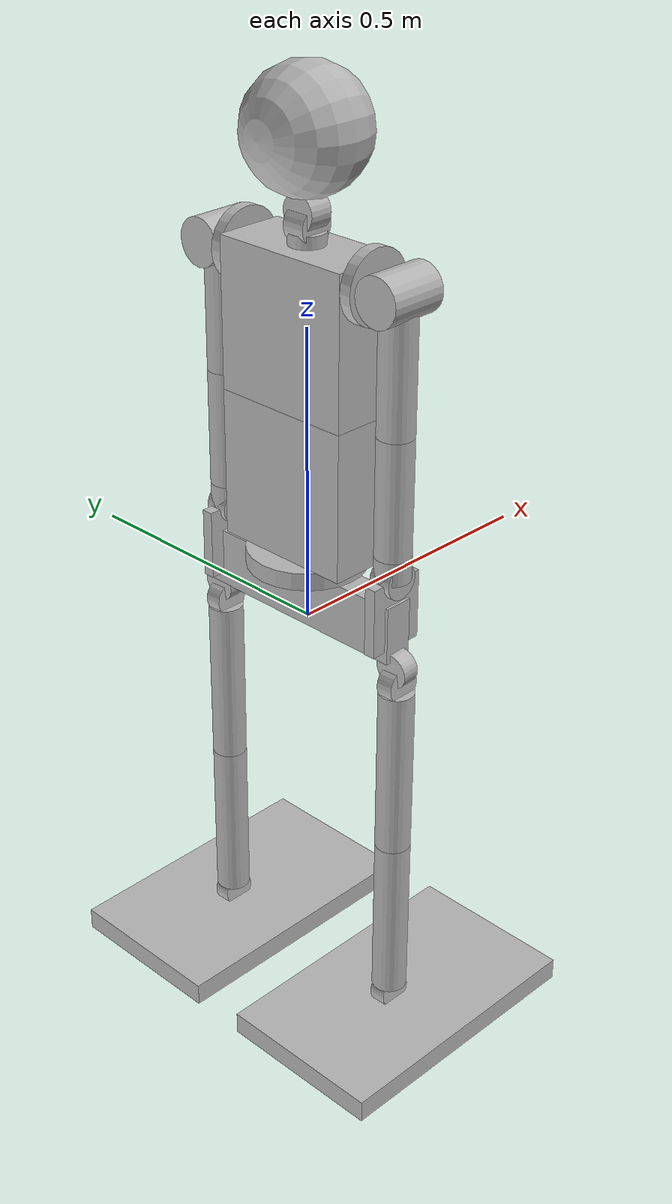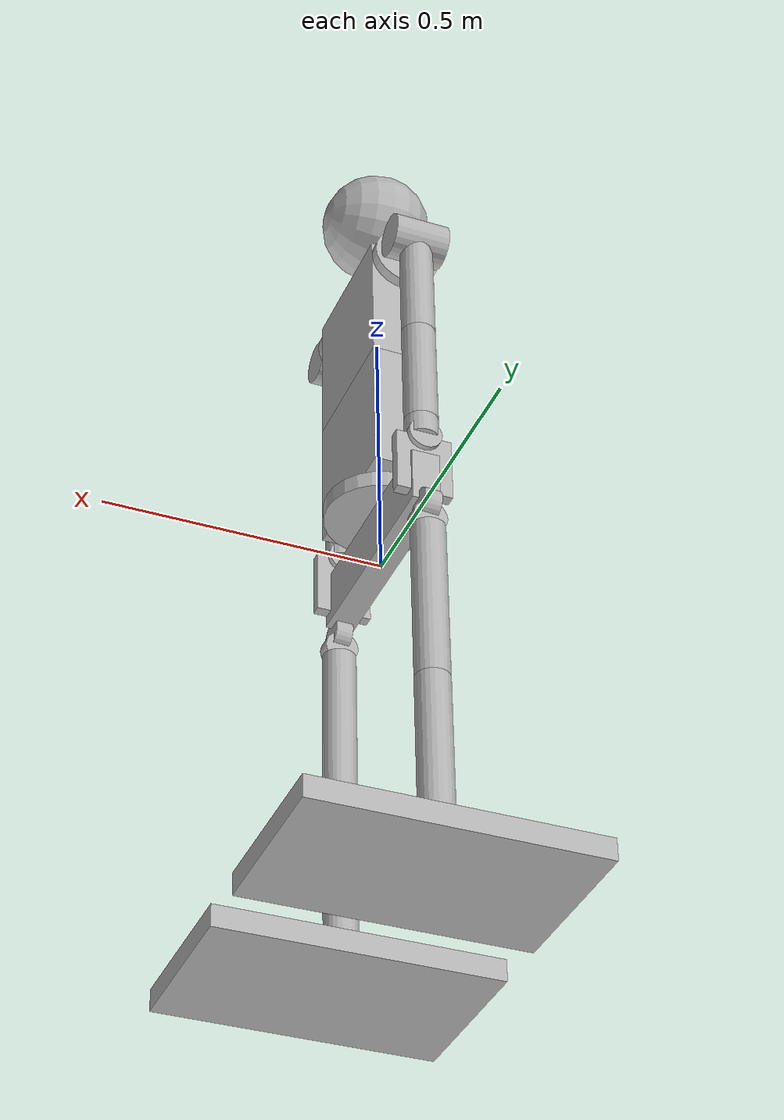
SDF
<sdf version='1.5'>
  <model name='stickbot_humanoid_32dof'>
    <link name='pelvis'>
      <pose frame=''>0 0 0 0 -0 0</pose>
      <inertial>
        <pose frame=''>0 0 0.05 0 -0 0</pose>
        <mass>2</mass>
        <inertia>
          <ixx>0.008667</ixx>
          <ixy>0</ixy>
          <ixz>0</ixz>
          <iyy>0.008667</iyy>
          <iyz>0</iyz>
          <izz>0.01667</izz>
        </inertia>
      </inertial>
      <collision name='pelvis_collision'>
        <pose frame=''>0 -0 0.05 0 -0 0</pose>
        <geometry>
          <box>
            <size>0.05 0.4 0.1</size>
          </box>
        </geometry>
      </collision>
      <visual name='pelvis_visual'>
        <pose frame=''>0 -0 0.05 0 -0 0</pose>
        <geometry>
          <box>
            <size>0.05 0.4 0.1</size>
          </box>
        </geometry>
      </visual>
    </link>
    <link name='leftHipLink1'>
      <pose frame=''>0 0.2 0 0 -0 0</pose>
      <inertial>
        <pose frame=''>0 0 -0.015 0 -0 0</pose>
        <mass>2</mass>
        <inertia>
          <ixx>0.00015</ixx>
          <ixy>0</ixy>
          <ixz>0</ixz>
          <iyy>0.00015</iyy>
          <iyz>0</iyz>
          <izz>0.000225</izz>
        </inertia>
      </inertial>
      <collision name='leftHipLink1_collision'>
        <pose frame=''>0 0 -0.015 1.507 -0 0</pose>
        <geometry>
          <cylinder>
            <length>0.03</length>
            <radius>0.03</radius>
          </cylinder>
        </geometry>
      </collision>
      <visual name='leftHipLink1_visual'>
        <pose frame=''>0 0 -0.015 0 1.507 0</pose>
        <geometry>
          <cylinder>
            <length>0.03</length>
            <radius>0.03</radius>
          </cylinder>
        </geometry>
      </visual>
    </link>
    <joint name='leftHipJoint1' type='revolute'>
      <child>leftHipLink1</child>
      <parent>pelvis</parent>
      <axis>
        <xyz>0 0 1</xyz>
        <limit>
          <lower>-1e+16</lower>
          <upper>1e+16</upper>
        </limit>
        <dynamics>
          <damping>0.1</damping>
          <friction>0</friction>
          <spring_reference>0</spring_reference>
          <spring_stiffness>0</spring_stiffness>
        </dynamics>
        <use_parent_model_frame>1</use_parent_model_frame>
      </axis>
      <physics>
        <provide_feedback>1</provide_feedback>
        <ode>
          <provide_feedback>1</provide_feedback>
          <limit>
            <cfm>0</cfm>
            <erp>0.2</erp>
          </limit>
        </ode>
      </physics>
    </joint>
    <link name='leftHipExtensorLink'>
      <pose frame=''>0 0.2 -0.03 0 -0 0</pose>
      <inertial>
        <pose frame=''>0 0 -0.015 0 -0 0</pose>
        <mass>2</mass>
        <inertia>
          <ixx>0.00015</ixx>
          <ixy>0</ixy>
          <ixz>0</ixz>
          <iyy>0.00015</iyy>
          <iyz>0</iyz>
          <izz>0.000225</izz>
        </inertia>
      </inertial>
      <collision name='leftHipExtensorLink_collision'>
        <pose frame=''>0 0 -0.015 1.507 -0 0</pose>
        <geometry>
          <cylinder>
            <length>0.03</length>
            <radius>0.03</radius>
          </cylinder>
        </geometry>
      </collision>
      <visual name='leftHipExtensorLink_visual'>
        <pose frame=''>0 0 -0.015 1.507 -0 0</pose>
        <geometry>
          <cylinder>
            <length>0.03</length>
            <radius>0.03</radius>
          </cylinder>
        </geometry>
      </visual>
    </link>
    <joint name='leftHipExtensor' type='revolute'>
      <child>leftHipExtensorLink</child>
      <parent>leftHipLink1</parent>
      <axis>
        <xyz>0 1 0</xyz>
        <limit>
          <lower>-1e+16</lower>
          <upper>1e+16</upper>
        </limit>
        <dynamics>
          <damping>0.1</damping>
          <friction>0</friction>
          <spring_reference>0</spring_reference>
          <spring_stiffness>0</spring_stiffness>
        </dynamics>
        <use_parent_model_frame>1</use_parent_model_frame>
      </axis>
      <physics>
        <provide_feedback>1</provide_feedback>
        <ode>
          <provide_feedback>1</provide_feedback>
          <limit>
            <cfm>0</cfm>
            <erp>0.2</erp>
          </limit>
        </ode>
      </physics>
    </joint>
    <link name='leftUpperLeg'>
      <pose frame=''>0 0.2 -0.06 0 -0 0</pose>
      <inertial>
        <pose frame=''>-0 0 -0.15 0 -0 0</pose>
        <mass>2</mass>
        <inertia>
          <ixx>0.01545</ixx>
          <ixy>0</ixy>
          <ixz>0</ixz>
          <iyy>0.01545</iyy>
          <iyz>0</iyz>
          <izz>0.0009</izz>
        </inertia>
      </inertial>
      <collision name='leftUpperLeg_collision'>
        <pose frame=''>0 0 -0.3 0 -0 0</pose>
        <geometry>
          <cylinder>
            <length>0.3</length>
            <radius>0.03</radius>
          </cylinder>
        </geometry>
      </collision>
      <visual name='leftUpperLeg_visual'>
        <pose frame=''>0 0 -0.15 0 -0 0</pose>
        <geometry>
          <cylinder>
            <length>0.3</length>
            <radius>0.03</radius>
          </cylinder>
        </geometry>
      </visual>
    </link>
    <joint name='leftHipAductor' type='revolute'>
      <child>leftUpperLeg</child>
      <parent>leftHipExtensorLink</parent>
      <axis>
        <xyz>1 0 0</xyz>
        <limit>
          <lower>-1e+16</lower>
          <upper>1e+16</upper>
        </limit>
        <dynamics>
          <damping>0.1</damping>
          <friction>0</friction>
          <spring_reference>0</spring_reference>
          <spring_stiffness>0</spring_stiffness>
        </dynamics>
        <use_parent_model_frame>1</use_parent_model_frame>
      </axis>
      <physics>
        <provide_feedback>1</provide_feedback>
        <ode>
          <provide_feedback>1</provide_feedback>
          <limit>
            <cfm>0</cfm>
            <erp>0.2</erp>
          </limit>
        </ode>
      </physics>
    </joint>
    <link name='leftLowerLeg'>
      <pose frame=''>0 0.2 -0.36 0 -0 0</pose>
      <inertial>
        <pose frame=''>-0 0 -0.15 0 -0 0</pose>
        <mass>2</mass>
        <inertia>
          <ixx>0.01545</ixx>
          <ixy>0</ixy>
          <ixz>0</ixz>
          <iyy>0.01545</iyy>
          <iyz>0</iyz>
          <izz>0.0009</izz>
        </inertia>
      </inertial>
      <collision name='leftLowerLeg_collision'>
        <pose frame=''>0 0 -0.15 0 -0 0</pose>
        <geometry>
          <cylinder>
            <length>0.3</length>
            <radius>0.03</radius>
          </cylinder>
        </geometry>
      </collision>
      <visual name='leftLowerLeg_visual'>
        <pose frame=''>0 0 -0.15 0 -0 0</pose>
        <geometry>
          <cylinder>
            <length>0.3</length>
            <radius>0.03</radius>
          </cylinder>
        </geometry>
      </visual>
    </link>
    <joint name='leftKnee' type='revolute'>
      <child>leftLowerLeg</child>
      <parent>leftUpperLeg</parent>
      <axis>
        <xyz>0 1 0</xyz>
        <limit>
          <lower>-1e+16</lower>
          <upper>1e+16</upper>
        </limit>
        <dynamics>
          <damping>0.1</damping>
          <friction>0</friction>
          <spring_reference>0</spring_reference>
          <spring_stiffness>0</spring_stiffness>
        </dynamics>
        <use_parent_model_frame>1</use_parent_model_frame>
      </axis>
      <physics>
        <provide_feedback>1</provide_feedback>
        <ode>
          <provide_feedback>1</provide_feedback>
          <limit>
            <cfm>0</cfm>
            <erp>0.2</erp>
          </limit>
        </ode>
      </physics>
    </joint>
    <link name='leftAnkleLink'>
      <pose frame=''>0 0.2 -0.66 0 -0 0</pose>
      <inertial>
        <pose frame=''>0 0 -0.015 0 -0 0</pose>
        <mass>3</mass>
        <inertia>
          <ixx>0.00015</ixx>
          <ixy>0</ixy>
          <ixz>0</ixz>
          <iyy>0.00015</iyy>
          <iyz>0</iyz>
          <izz>0.000225</izz>
        </inertia>
      </inertial>
      <collision name='leftAnkleLink_collision'>
        <pose frame=''>0 0 -0.015 0 -0 0</pose>
        <geometry>
          <cylinder>
            <length>0.03</length>
            <radius>0.03</radius>
          </cylinder>
        </geometry>
      </collision>
      <visual name='leftAnkleLink_visual'>
        <pose frame=''>0 0 -0.015 1.507 -0 0</pose>
        <geometry>
          <cylinder>
            <length>0.03</length>
            <radius>0.03</radius>
          </cylinder>
        </geometry>
      </visual>
    </link>
    <joint name='leftAnklePitch' type='revolute'>
      <child>leftAnkleLink</child>
      <parent>leftLowerLeg</parent>
      <axis>
        <xyz>0 1 0</xyz>
        <limit>
          <lower>-1e+16</lower>
          <upper>1e+16</upper>
        </limit>
        <dynamics>
          <damping>0.1</damping>
          <friction>0</friction>
          <spring_reference>0</spring_reference>
          <spring_stiffness>0</spring_stiffness>
        </dynamics>
        <use_parent_model_frame>1</use_parent_model_frame>
      </axis>
      <physics>
        <provide_feedback>1</provide_feedback>
        <ode>
          <provide_feedback>1</provide_feedback>
          <limit>
            <cfm>0</cfm>
            <erp>0.2</erp>
          </limit>
        </ode>
      </physics>
    </joint>
    <link name='leftFoot'>
      <pose frame=''>0.025 0.2 -0.69 0 -0 0</pose>
      <inertial>
        <pose frame=''>0.03 0 -0.01 0 -0 0</pose>
        <mass>10</mass>
        <inertia>
          <ixx>0.008667</ixx>
          <ixy>0</ixy>
          <ixz>0</ixz>
          <iyy>0.008667</iyy>
          <iyz>0</iyz>
          <izz>0.01667</izz>
        </inertia>
      </inertial>
      <collision name='leftFoot_collision'>
        <pose frame=''>0 0 -0.02 0 -0 0</pose>
        <geometry>
          <box>
            <size>0.5 0.3 0.04</size>
          </box>
        </geometry>
      </collision>
      <visual name='leftFoot_visual'>
        <pose frame=''>0 0 -0.02 0 -0 0</pose>
        <geometry>
          <box>
            <size>0.5 0.3 0.04</size>
          </box>
        </geometry>
      </visual>
    </link>
    <joint name='leftAnkleRoll' type='revolute'>
      <child>leftFoot</child>
      <parent>leftAnkleLink</parent>
      <axis>
        <xyz>1 0 0</xyz>
        <limit>
          <lower>-1e+16</lower>
          <upper>1e+16</upper>
        </limit>
        <dynamics>
          <damping>0.1</damping>
          <friction>0</friction>
          <spring_reference>0</spring_reference>
          <spring_stiffness>0</spring_stiffness>
        </dynamics>
        <use_parent_model_frame>1</use_parent_model_frame>
      </axis>
      <physics>
        <provide_feedback>1</provide_feedback>
        <ode>
          <provide_feedback>1</provide_feedback>
          <limit>
            <cfm>0</cfm>
            <erp>0.2</erp>
          </limit>
        </ode>
      </physics>
    </joint>
    <link name='rightHipLink1'>
      <pose frame=''>0 -0.2 0 0 -0 0</pose>
      <inertial>
        <pose frame=''>0 0 -0.015 0 -0 0</pose>
        <mass>2</mass>
        <inertia>
          <ixx>0.00015</ixx>
          <ixy>0</ixy>
          <ixz>0</ixz>
          <iyy>0.00015</iyy>
          <iyz>0</iyz>
          <izz>0.000225</izz>
        </inertia>
      </inertial>
      <collision name='rightHipLink1_collision'>
        <pose frame=''>0 0 -0.015 1.507 -0 0</pose>
        <geometry>
          <cylinder>
            <length>0.03</length>
            <radius>0.03</radius>
          </cylinder>
        </geometry>
      </collision>
      <visual name='rightHipLink1_visual'>
        <pose frame=''>0 0 -0.015 0 1.507 0</pose>
        <geometry>
          <cylinder>
            <length>0.03</length>
            <radius>0.03</radius>
          </cylinder>
        </geometry>
      </visual>
    </link>
    <joint name='rightHipJoint1' type='revolute'>
      <child>rightHipLink1</child>
      <parent>pelvis</parent>
      <axis>
        <xyz>0 0 1</xyz>
        <limit>
          <lower>-1e+16</lower>
          <upper>1e+16</upper>
        </limit>
        <dynamics>
          <damping>0.1</damping>
          <friction>0</friction>
          <spring_reference>0</spring_reference>
          <spring_stiffness>0</spring_stiffness>
        </dynamics>
        <use_parent_model_frame>1</use_parent_model_frame>
      </axis>
      <physics>
        <provide_feedback>1</provide_feedback>
        <ode>
          <provide_feedback>1</provide_feedback>
          <limit>
            <cfm>0</cfm>
            <erp>0.2</erp>
          </limit>
        </ode>
      </physics>
    </joint>
    <link name='rightHipExtensorLink'>
      <pose frame=''>0 -0.2 -0.03 0 -0 0</pose>
      <inertial>
        <pose frame=''>0 0 -0.015 0 -0 0</pose>
        <mass>2</mass>
        <inertia>
          <ixx>0.00015</ixx>
          <ixy>0</ixy>
          <ixz>0</ixz>
          <iyy>0.00015</iyy>
          <iyz>0</iyz>
          <izz>0.000225</izz>
        </inertia>
      </inertial>
      <collision name='rightHipExtensorLink_collision'>
        <pose frame=''>0 0 -0.015 1.507 -0 0</pose>
        <geometry>
          <cylinder>
            <length>0.03</length>
            <radius>0.03</radius>
          </cylinder>
        </geometry>
      </collision>
      <visual name='rightHipExtensorLink_visual'>
        <pose frame=''>0 0 -0.015 1.507 -0 0</pose>
        <geometry>
          <cylinder>
            <length>0.03</length>
            <radius>0.03</radius>
          </cylinder>
        </geometry>
      </visual>
    </link>
    <joint name='rightHipExtensor' type='revolute'>
      <child>rightHipExtensorLink</child>
      <parent>rightHipLink1</parent>
      <axis>
        <xyz>0 1 0</xyz>
        <limit>
          <lower>-1e+16</lower>
          <upper>1e+16</upper>
        </limit>
        <dynamics>
          <damping>0.1</damping>
          <friction>0</friction>
          <spring_reference>0</spring_reference>
          <spring_stiffness>0</spring_stiffness>
        </dynamics>
        <use_parent_model_frame>1</use_parent_model_frame>
      </axis>
      <physics>
        <provide_feedback>1</provide_feedback>
        <ode>
          <provide_feedback>1</provide_feedback>
          <limit>
            <cfm>0</cfm>
            <erp>0.2</erp>
          </limit>
        </ode>
      </physics>
    </joint>
    <link name='rightUpperLeg'>
      <pose frame=''>0 -0.2 -0.06 0 -0 0</pose>
      <inertial>
        <pose frame=''>-0 0 -0.15 0 -0 0</pose>
        <mass>2</mass>
        <inertia>
          <ixx>0.01545</ixx>
          <ixy>0</ixy>
          <ixz>0</ixz>
          <iyy>0.01545</iyy>
          <iyz>0</iyz>
          <izz>0.0009</izz>
        </inertia>
      </inertial>
      <collision name='rightUpperLeg_collision'>
        <pose frame=''>0 0 -0.3 0 -0 0</pose>
        <geometry>
          <cylinder>
            <length>0.3</length>
            <radius>0.03</radius>
          </cylinder>
        </geometry>
      </collision>
      <visual name='rightUpperLeg_visual'>
        <pose frame=''>0 0 -0.15 0 -0 0</pose>
        <geometry>
          <cylinder>
            <length>0.3</length>
            <radius>0.03</radius>
          </cylinder>
        </geometry>
      </visual>
    </link>
    <joint name='rightHipAductor' type='revolute'>
      <child>rightUpperLeg</child>
      <parent>rightHipExtensorLink</parent>
      <axis>
        <xyz>1 0 0</xyz>
        <limit>
          <lower>-1e+16</lower>
          <upper>1e+16</upper>
        </limit>
        <dynamics>
          <damping>0.1</damping>
          <friction>0</friction>
          <spring_reference>0</spring_reference>
          <spring_stiffness>0</spring_stiffness>
        </dynamics>
        <use_parent_model_frame>1</use_parent_model_frame>
      </axis>
      <physics>
        <provide_feedback>1</provide_feedback>
        <ode>
          <provide_feedback>1</provide_feedback>
          <limit>
            <cfm>0</cfm>
            <erp>0.2</erp>
          </limit>
        </ode>
      </physics>
    </joint>
    <link name='rightLowerLeg'>
      <pose frame=''>0 -0.2 -0.36 0 -0 0</pose>
      <inertial>
        <pose frame=''>-0 0 -0.15 0 -0 0</pose>
        <mass>2</mass>
        <inertia>
          <ixx>0.01545</ixx>
          <ixy>0</ixy>
          <ixz>0</ixz>
          <iyy>0.01545</iyy>
          <iyz>0</iyz>
          <izz>0.0009</izz>
        </inertia>
      </inertial>
      <collision name='rightLowerLeg_collision'>
        <pose frame=''>0 0 -0.15 0 -0 0</pose>
        <geometry>
          <cylinder>
            <length>0.3</length>
            <radius>0.03</radius>
          </cylinder>
        </geometry>
      </collision>
      <visual name='rightLowerLeg_visual'>
        <pose frame=''>0 0 -0.15 0 -0 0</pose>
        <geometry>
          <cylinder>
            <length>0.3</length>
            <radius>0.03</radius>
          </cylinder>
        </geometry>
      </visual>
    </link>
    <joint name='rightKnee' type='revolute'>
      <child>rightLowerLeg</child>
      <parent>rightUpperLeg</parent>
      <axis>
        <xyz>0 1 0</xyz>
        <limit>
          <lower>-1e+16</lower>
          <upper>1e+16</upper>
        </limit>
        <dynamics>
          <damping>0.1</damping>
          <friction>0</friction>
          <spring_reference>0</spring_reference>
          <spring_stiffness>0</spring_stiffness>
        </dynamics>
        <use_parent_model_frame>1</use_parent_model_frame>
      </axis>
      <physics>
        <provide_feedback>1</provide_feedback>
        <ode>
          <provide_feedback>1</provide_feedback>
          <limit>
            <cfm>0</cfm>
            <erp>0.2</erp>
          </limit>
        </ode>
      </physics>
    </joint>
    <link name='rightAnkleLink'>
      <pose frame=''>0 -0.2 -0.66 0 -0 0</pose>
      <inertial>
        <pose frame=''>0 0 -0.015 0 -0 0</pose>
        <mass>3</mass>
        <inertia>
          <ixx>0.00015</ixx>
          <ixy>0</ixy>
          <ixz>0</ixz>
          <iyy>0.00015</iyy>
          <iyz>0</iyz>
          <izz>0.000225</izz>
        </inertia>
      </inertial>
      <collision name='rightAnkleLink_collision'>
        <pose frame=''>0 0 -0.015 1.507 -0 0</pose>
        <geometry>
          <cylinder>
            <length>0.03</length>
            <radius>0.03</radius>
          </cylinder>
        </geometry>
      </collision>
      <visual name='rightAnkleLink_visual'>
        <pose frame=''>0 0 -0.015 1.507 -0 0</pose>
        <geometry>
          <cylinder>
            <length>0.03</length>
            <radius>0.03</radius>
          </cylinder>
        </geometry>
      </visual>
    </link>
    <joint name='rightAnklePitch' type='revolute'>
      <child>rightAnkleLink</child>
      <parent>rightLowerLeg</parent>
      <axis>
        <xyz>0 1 0</xyz>
        <limit>
          <lower>-1e+16</lower>
          <upper>1e+16</upper>
        </limit>
        <dynamics>
          <damping>0.1</damping>
          <friction>0</friction>
          <spring_reference>0</spring_reference>
          <spring_stiffness>0</spring_stiffness>
        </dynamics>
        <use_parent_model_frame>1</use_parent_model_frame>
      </axis>
      <physics>
        <provide_feedback>1</provide_feedback>
        <ode>
          <provide_feedback>1</provide_feedback>
          <limit>
            <cfm>0</cfm>
            <erp>0.2</erp>
          </limit>
        </ode>
      </physics>
    </joint>
    <link name='rightFoot'>
      <pose frame=''>0.025 -0.2 -0.69 0 -0 0</pose>
      <inertial>
        <pose frame=''>0.03 0 -0.02 0 -0 0</pose>
        <mass>10</mass>
        <inertia>
          <ixx>0.008667</ixx>
          <ixy>0</ixy>
          <ixz>0</ixz>
          <iyy>0.008667</iyy>
          <iyz>0</iyz>
          <izz>0.01667</izz>
        </inertia>
      </inertial>
      <collision name='rightFoot_collision'>
        <pose frame=''>0 0 -0.02 0 -0 0</pose>
        <geometry>
          <box>
            <size>0.5 0.3 0.04</size>
          </box>
        </geometry>
      </collision>
      <visual name='rightFoot_visual'>
        <pose frame=''>0 0 -0.02 0 -0 0</pose>
        <geometry>
          <box>
            <size>0.5 0.3 0.04</size>
          </box>
        </geometry>
      </visual>
    </link>
    <joint name='rightAnkleRoll' type='revolute'>
      <child>rightFoot</child>
      <parent>rightAnkleLink</parent>
      <axis>
        <xyz>1 0 0</xyz>
        <limit>
          <lower>-1e+16</lower>
          <upper>1e+16</upper>
        </limit>
        <dynamics>
          <damping>0.1</damping>
          <friction>0</friction>
          <spring_reference>0</spring_reference>
          <spring_stiffness>0</spring_stiffness>
        </dynamics>
        <use_parent_model_frame>1</use_parent_model_frame>
      </axis>
      <physics>
        <provide_feedback>1</provide_feedback>
        <ode>
          <provide_feedback>1</provide_feedback>
          <limit>
            <cfm>0</cfm>
            <erp>0.2</erp>
          </limit>
        </ode>
      </physics>
    </joint>
    <link name='abdomen'>
      <pose frame=''>0 0 0.1 0 -0 0</pose>
      <inertial>
        <pose frame=''>0 0 0.125 0 -0 0</pose>
        <mass>1</mass>
        <inertia>
          <ixx>0.028125</ixx>
          <ixy>0</ixy>
          <ixz>0</ixz>
          <iyy>0.045</iyy>
          <iyz>0</iyz>
          <izz>0.028125</izz>
        </inertia>
      </inertial>
      <collision name='abdomen_collision'>
        <pose frame=''>0 0 0.015 0 -0 0</pose>
        <geometry>
          <cylinder>
            <length>0.03</length>
            <radius>0.1</radius>
          </cylinder>
        </geometry>
      </collision>
      <visual name='abdomen_visual'>
        <pose frame=''>0 0 0.015 0 -0 0</pose>
        <geometry>
          <cylinder>
            <length>0.03</length>
            <radius>0.1</radius>
          </cylinder>
        </geometry>
      </visual>
    </link>
    <joint name='waist_rotator' type='revolute'>
      <child>abdomen</child>
      <parent>pelvis</parent>
      <axis>
        <xyz>0 0 1</xyz>
        <limit>
          <lower>-1e+16</lower>
          <upper>1e+16</upper>
        </limit>
        <dynamics>
          <damping>0.1</damping>
          <friction>0</friction>
          <spring_reference>0</spring_reference>
          <spring_stiffness>0</spring_stiffness>
        </dynamics>
        <use_parent_model_frame>1</use_parent_model_frame>
      </axis>
      <physics>
        <provide_feedback>1</provide_feedback>
        <ode>
          <provide_feedback>1</provide_feedback>
          <limit>
            <cfm>0</cfm>
            <erp>0.2</erp>
          </limit>
        </ode>
      </physics>
    </joint>
    <link name='torso'>
      <pose frame=''>0 0 0.13 0 -0 0</pose>
      <inertial>
        <pose frame=''>0 0 0.125 0 -0 0</pose>
        <mass>2</mass>
        <inertia>
          <ixx>0.028125</ixx>
          <ixy>0</ixy>
          <ixz>0</ixz>
          <iyy>0.045</iyy>
          <iyz>0</iyz>
          <izz>0.028125</izz>
        </inertia>
      </inertial>
      <collision name='torso_collision'>
        <pose frame=''>0 0 0.125 0 -0 0</pose>
        <geometry>
          <box>
            <size>0.12 0.25 0.25</size>
          </box>
        </geometry>
      </collision>
      <visual name='torso_visual'>
        <pose frame=''>0 0 0.125 0 -0 0</pose>
        <geometry>
          <box>
            <size>0.12 0.25 0.25</size>
          </box>
        </geometry>
      </visual>
    </link>
    <joint name='torso_extensor' type='revolute'>
      <child>torso</child>
      <parent>abdomen</parent>
      <axis>
        <xyz>0 1 0</xyz>
        <limit>
          <lower>-1e+16</lower>
          <upper>1e+16</upper>
        </limit>
        <dynamics>
          <damping>0.1</damping>
          <friction>0</friction>
          <spring_reference>0</spring_reference>
          <spring_stiffness>0</spring_stiffness>
        </dynamics>
        <use_parent_model_frame>1</use_parent_model_frame>
      </axis>
      <physics>
        <provide_feedback>1</provide_feedback>
        <ode>
          <provide_feedback>1</provide_feedback>
          <limit>
            <cfm>0</cfm>
            <erp>0.2</erp>
          </limit>
        </ode>
      </physics>
    </joint>
    <link name='chest'>
      <pose frame=''>0 0 0.38 0 -0 0</pose>
      <inertial>
        <pose frame=''>0 0 0.125 0 -0 0</pose>
        <mass>2</mass>
        <inertia>
          <ixx>0.028125</ixx>
          <ixy>0</ixy>
          <ixz>0</ixz>
          <iyy>0.045</iyy>
          <iyz>0</iyz>
          <izz>0.028125</izz>
        </inertia>
      </inertial>
      <collision name='chest_collision'>
        <pose frame=''>0 0 0.125 0 -0 0</pose>
        <geometry>
          <box>
            <size>0.12 0.25 0.25</size>
          </box>
        </geometry>
      </collision>
      <visual name='chest_visual'>
        <pose frame=''>0 0 0.125 0 -0 0</pose>
        <geometry>
          <box>
            <size>0.12 0.25 0.25</size>
          </box>
        </geometry>
      </visual>
    </link>
    <joint name='chest_extensor' type='revolute'>
      <child>chest</child>
      <parent>torso</parent>
      <axis>
        <xyz>0 1 0</xyz>
        <limit>
          <lower>-1e+16</lower>
          <upper>1e+16</upper>
        </limit>
        <dynamics>
          <damping>0.1</damping>
          <friction>0</friction>
          <spring_reference>0</spring_reference>
          <spring_stiffness>0</spring_stiffness>
        </dynamics>
        <use_parent_model_frame>1</use_parent_model_frame>
      </axis>
      <physics>
        <provide_feedback>1</provide_feedback>
        <ode>
          <provide_feedback>1</provide_feedback>
          <limit>
            <cfm>0</cfm>
            <erp>0.2</erp>
          </limit>
        </ode>
      </physics>
    </joint>
    <link name='left_shoulder_extensor'>
      <pose frame=''>0 0.125 0.6 0 -0 0</pose>
      <inertial>
        <pose frame=''>0 0.01 0 0 -0 0</pose>
        <mass>1</mass>
        <inertia>
          <ixx>0.028125</ixx>
          <ixy>0</ixy>
          <ixz>0</ixz>
          <iyy>0.045</iyy>
          <iyz>0</iyz>
          <izz>0.028125</izz>
        </inertia>
      </inertial>
      <collision name='left_shoulder_extensor_collision'>
        <pose frame=''>0 0.01 0 1.57 -0 0</pose>
        <geometry>
          <cylinder>
            <length>0.02</length>
            <radius>0.06</radius>
          </cylinder>
        </geometry>
        <surface>
          <contact>
            <ode/>
          </contact>
          <friction>
            <ode/>
          </friction>
        </surface>
      </collision>
      <visual name='left_shoulder_extensor_visual'>
        <pose frame=''>0 0.01 0 1.57 -0 0</pose>
        <geometry>
          <cylinder>
            <length>0.02</length>
            <radius>0.06</radius>
          </cylinder>
        </geometry>
        <material>
          <script>
            <uri>__default__</uri>
            <name>__default__</name>
          </script>
        </material>
      </visual>
      <gravity>1</gravity>
      <velocity_decay/>
      <self_collide>0</self_collide>
    </link>
    <joint name='left_shoulder_extensor' type='revolute'>
      <child>left_shoulder_extensor</child>
      <parent>chest</parent>
      <axis>
        <xyz>0 1 0</xyz>
        <limit>
          <lower>-1e+16</lower>
          <upper>1e+16</upper>
        </limit>
        <dynamics>
          <damping>0.1</damping>
          <friction>0</friction>
          <spring_reference>0</spring_reference>
          <spring_stiffness>0</spring_stiffness>
        </dynamics>
        <use_parent_model_frame>1</use_parent_model_frame>
      </axis>
      <physics>
        <provide_feedback>1</provide_feedback>
        <ode>
          <provide_feedback>1</provide_feedback>
          <limit>
            <cfm>0</cfm>
            <erp>0.2</erp>
          </limit>
        </ode>
      </physics>
    </joint>
    <link name='left_shoulder_adductor'>
      <pose frame=''>0 0.165 0.6 0 -0 0</pose>
      <inertial>
        <pose frame=''>0 0.02 0 0 -0 0</pose>
        <mass>1</mass>
        <inertia>
          <ixx>0.028125</ixx>
          <ixy>0</ixy>
          <ixz>0</ixz>
          <iyy>0.045</iyy>
          <iyz>0</iyz>
          <izz>0.028125</izz>
        </inertia>
      </inertial>
      <collision name='left_shoulder_adductor_collision'>
        <pose frame=''>0 0.02 0 0 1.57 0</pose>
        <geometry>
          <cylinder>
            <length>0.1</length>
            <radius>0.04</radius>
          </cylinder>
        </geometry>
        <surface>
          <contact>
            <ode/>
          </contact>
          <friction>
            <ode/>
          </friction>
        </surface>
      </collision>
      <visual name='left_shoulder_adductor_visual'>
        <pose frame=''>0 0.02 0 0 1.57 0</pose>
        <geometry>
          <cylinder>
            <length>0.1</length>
            <radius>0.04</radius>
          </cylinder>
        </geometry>
        <material>
          <script>
            <uri>__default__</uri>
            <name>__default__</name>
          </script>
        </material>
      </visual>
      <gravity>1</gravity>
      <velocity_decay/>
      <self_collide>0</self_collide>
    </link>
    <joint name='left_shoulder_adductor' type='revolute'>
      <child>left_shoulder_adductor</child>
      <parent>left_shoulder_extensor</parent>
      <axis>
        <xyz>1 0 0</xyz>
        <limit>
          <lower>-1e+16</lower>
          <upper>1e+16</upper>
        </limit>
        <dynamics>
          <damping>0.1</damping>
          <friction>0</friction>
          <spring_reference>0</spring_reference>
          <spring_stiffness>0</spring_stiffness>
        </dynamics>
        <use_parent_model_frame>1</use_parent_model_frame>
      </axis>
      <physics>
        <provide_feedback>1</provide_feedback>
        <ode>
          <provide_feedback>1</provide_feedback>
          <limit>
            <cfm>0</cfm>
            <erp>0.2</erp>
          </limit>
        </ode>
      </physics>
    </joint>
    <link name='left_shoulder_rotator'>
      <pose frame=''>0 0.185 0.58 0 -0 0</pose>
      <inertial>
        <pose frame=''>0 0 -0.1 0 -0 0</pose>
        <mass>2</mass>
        <inertia>
          <ixx>0.028125</ixx>
          <ixy>0</ixy>
          <ixz>0</ixz>
          <iyy>0.045</iyy>
          <iyz>0</iyz>
          <izz>0.028125</izz>
        </inertia>
      </inertial>
      <collision name='left_shoulder_rotator_collision'>
        <pose frame=''>0 0 -0.1 0 -0 0</pose>
        <geometry>
          <cylinder>
            <length>0.2</length>
            <radius>0.03</radius>
          </cylinder>
        </geometry>
        <surface>
          <contact>
            <ode/>
          </contact>
          <friction>
            <ode/>
          </friction>
        </surface>
      </collision>
      <visual name='left_shoulder_rotator_visual'>
        <pose frame=''>0 0 -0.1 0 -0 0</pose>
        <geometry>
          <cylinder>
            <length>0.2</length>
            <radius>0.03</radius>
          </cylinder>
        </geometry>
        <material>
          <script>
            <uri>__default__</uri>
            <name>__default__</name>
          </script>
        </material>
      </visual>
      <gravity>1</gravity>
      <velocity_decay/>
      <self_collide>0</self_collide>
    </link>
    <joint name='left_shoulder_rotator' type='revolute'>
      <child>left_shoulder_rotator</child>
      <parent>left_shoulder_adductor</parent>
      <axis>
        <xyz>0 0 1</xyz>
        <limit>
          <lower>-1e+16</lower>
          <upper>1e+16</upper>
        </limit>
        <dynamics>
          <damping>0.1</damping>
          <friction>0</friction>
          <spring_reference>0</spring_reference>
          <spring_stiffness>0</spring_stiffness>
        </dynamics>
        <use_parent_model_frame>1</use_parent_model_frame>
      </axis>
      <physics>
        <provide_feedback>1</provide_feedback>
        <ode>
          <provide_feedback>1</provide_feedback>
          <limit>
            <cfm>0</cfm>
            <erp>0.2</erp>
          </limit>
        </ode>
      </physics>
    </joint>
    <link name='left_elbow_extensor'>
      <pose frame=''>0 0.185 0.38 0 -0 0</pose>
      <inertial>
        <pose frame=''>0 0 -0.1 0 -0 0</pose>
        <mass>2</mass>
        <inertia>
          <ixx>0.028125</ixx>
          <ixy>0</ixy>
          <ixz>0</ixz>
          <iyy>0.045</iyy>
          <iyz>0</iyz>
          <izz>0.028125</izz>
        </inertia>
      </inertial>
      <collision name='left_elbow_extensor_collision'>
        <pose frame=''>0 0 -0.1 0 -0 0</pose>
        <geometry>
          <cylinder>
            <length>0.2</length>
            <radius>0.03</radius>
          </cylinder>
        </geometry>
        <surface>
          <contact>
            <ode/>
          </contact>
          <friction>
            <ode/>
          </friction>
        </surface>
      </collision>
      <visual name='left_elbow_extensor_visual'>
        <pose frame=''>0 0 -0.1 0 -0 0</pose>
        <geometry>
          <cylinder>
            <length>0.2</length>
            <radius>0.03</radius>
          </cylinder>
        </geometry>
        <material>
          <script>
            <uri>__default__</uri>
            <name>__default__</name>
          </script>
        </material>
      </visual>
      <gravity>1</gravity>
      <velocity_decay/>
      <self_collide>0</self_collide>
    </link>
    <joint name='left_elbow_extensor' type='revolute'>
      <child>left_elbow_extensor</child>
      <parent>left_shoulder_rotator</parent>
      <axis>
        <xyz>0 1 0</xyz>
        <limit>
          <lower>-1e+16</lower>
          <upper>1e+16</upper>
        </limit>
        <dynamics>
          <damping>0.1</damping>
          <friction>0</friction>
          <spring_reference>0</spring_reference>
          <spring_stiffness>0</spring_stiffness>
        </dynamics>
        <use_parent_model_frame>1</use_parent_model_frame>
      </axis>
      <physics>
        <provide_feedback>1</provide_feedback>
        <ode>
          <provide_feedback>1</provide_feedback>
          <limit>
            <cfm>0</cfm>
            <erp>0.2</erp>
          </limit>
        </ode>
      </physics>
    </joint>
    <link name='left_wrist_rotator'>
      <pose frame=''>0 0.185 0.18 0 -0 0</pose>
      <inertial>
        <pose frame=''>0 0 -0.02 0 -0 0</pose>
        <mass>2</mass>
        <inertia>
          <ixx>0.028125</ixx>
          <ixy>0</ixy>
          <ixz>0</ixz>
          <iyy>0.045</iyy>
          <iyz>0</iyz>
          <izz>0.028125</izz>
        </inertia>
      </inertial>
      <collision name='left_wrist_rotator_collision'>
        <pose frame=''>0 0 -0.02 0 -0 0</pose>
        <geometry>
          <cylinder>
            <length>0.04</length>
            <radius>0.03</radius>
          </cylinder>
        </geometry>
        <surface>
          <contact>
            <ode/>
          </contact>
          <friction>
            <ode/>
          </friction>
        </surface>
      </collision>
      <visual name='left_wrist_rotator_visual'>
        <pose frame=''>0 0 -0.02 0 -0 0</pose>
        <geometry>
          <cylinder>
            <length>0.04</length>
            <radius>0.03</radius>
          </cylinder>
        </geometry>
        <material>
          <script>
            <uri>__default__</uri>
            <name>__default__</name>
          </script>
        </material>
      </visual>
      <gravity>1</gravity>
      <velocity_decay/>
      <self_collide>0</self_collide>
    </link>
    <joint name='left_wrist_rotator' type='revolute'>
      <child>left_wrist_rotator</child>
      <parent>left_elbow_extensor</parent>
      <axis>
        <xyz>0 0 1</xyz>
        <limit>
          <lower>-1e+16</lower>
          <upper>1e+16</upper>
        </limit>
        <dynamics>
          <damping>0.1</damping>
          <friction>0</friction>
          <spring_reference>0</spring_reference>
          <spring_stiffness>0</spring_stiffness>
        </dynamics>
        <use_parent_model_frame>1</use_parent_model_frame>
      </axis>
      <physics>
        <provide_feedback>1</provide_feedback>
        <ode>
          <provide_feedback>1</provide_feedback>
          <limit>
            <cfm>0</cfm>
            <erp>0.2</erp>
          </limit>
        </ode>
      </physics>
    </joint>
    <link name='left_wrist_extensor'>
      <pose frame=''>0 0.185 0.16 0 -0 0</pose>
      <inertial>
        <pose frame=''>0 0 -0.02 0 -0 0</pose>
        <mass>1</mass>
        <inertia>
          <ixx>0.028125</ixx>
          <ixy>0</ixy>
          <ixz>0</ixz>
          <iyy>0.045</iyy>
          <iyz>0</iyz>
          <izz>0.028125</izz>
        </inertia>
      </inertial>
      <collision name='left_wrist_extensor_collision'>
        <pose frame=''>0 0 -0.02 1.57 -0 0</pose>
        <geometry>
          <cylinder>
            <length>0.04</length>
            <radius>0.03</radius>
          </cylinder>
        </geometry>
        <surface>
          <contact>
            <ode/>
          </contact>
          <friction>
            <ode/>
          </friction>
        </surface>
      </collision>
      <visual name='left_wrist_extensor_visual'>
        <pose frame=''>0 0 -0.02 1.57 -0 0</pose>
        <geometry>
          <cylinder>
            <length>0.04</length>
            <radius>0.03</radius>
          </cylinder>
        </geometry>
        <material>
          <script>
            <uri>__default__</uri>
            <name>__default__</name>
          </script>
        </material>
      </visual>
      <gravity>1</gravity>
      <velocity_decay/>
      <self_collide>0</self_collide>
    </link>
    <joint name='left_wrist_extensor' type='revolute'>
      <child>left_wrist_extensor</child>
      <parent>left_wrist_rotator</parent>
      <axis>
        <xyz>0 1 0</xyz>
        <limit>
          <lower>-1e+16</lower>
          <upper>1e+16</upper>
        </limit>
        <dynamics>
          <damping>0.1</damping>
          <friction>0</friction>
          <spring_reference>0</spring_reference>
          <spring_stiffness>0</spring_stiffness>
        </dynamics>
        <use_parent_model_frame>1</use_parent_model_frame>
      </axis>
      <physics>
        <provide_feedback>1</provide_feedback>
        <ode>
          <provide_feedback>1</provide_feedback>
          <limit>
            <cfm>0</cfm>
            <erp>0.2</erp>
          </limit>
        </ode>
      </physics>
    </joint>
    <link name='left_wrist_adductor'>
      <pose frame=''>0 0.185 0.14 0 -0 0</pose>
      <inertial>
        <pose frame=''>0 0 -0.06 0 -0 0</pose>
        <mass>1</mass>
        <inertia>
          <ixx>0.028125</ixx>
          <ixy>0</ixy>
          <ixz>0</ixz>
          <iyy>0.045</iyy>
          <iyz>0</iyz>
          <izz>0.028125</izz>
        </inertia>
      </inertial>
      <collision name='left_wrist_adductor_collision'>
        <pose frame=''>0 0 -0.06 0 -0 0</pose>
        <geometry>
          <box>
            <size>0.1 0.02 0.12</size>
          </box>
        </geometry>
        <surface>
          <contact>
            <ode/>
          </contact>
          <friction>
            <ode/>
          </friction>
        </surface>
      </collision>
      <visual name='left_wrist_adductor_visual'>
        <pose frame=''>0 0 -0.06 0 -0 0</pose>
        <geometry>
          <box>
            <size>0.1 0.02 0.12</size>
          </box>
        </geometry>
        <material>
          <script>
            <uri>__default__</uri>
            <name>__default__</name>
          </script>
        </material>
      </visual>
      <gravity>1</gravity>
      <velocity_decay/>
      <self_collide>0</self_collide>
    </link>
    <joint name='left_wrist_adductor' type='revolute'>
      <child>left_wrist_adductor</child>
      <parent>left_wrist_extensor</parent>
      <axis>
        <xyz>0 1 0</xyz>
        <limit>
          <lower>-1e+16</lower>
          <upper>1e+16</upper>
        </limit>
        <dynamics>
          <damping>0.1</damping>
          <friction>0</friction>
          <spring_reference>0</spring_reference>
          <spring_stiffness>0</spring_stiffness>
        </dynamics>
        <use_parent_model_frame>1</use_parent_model_frame>
      </axis>
      <physics>
        <provide_feedback>1</provide_feedback>
        <ode>
          <provide_feedback>1</provide_feedback>
          <limit>
            <cfm>0</cfm>
            <erp>0.2</erp>
          </limit>
        </ode>
      </physics>
    </joint>
    <link name='neck_rotator'>
      <pose frame=''>0 0 0.63 0 -0 0</pose>
      <inertial>
        <pose frame=''>0 0 0.01 0 -0 0</pose>
        <mass>0.5</mass>
        <inertia>
          <ixx>0.0028125</ixx>
          <ixy>0</ixy>
          <ixz>0</ixz>
          <iyy>0.0045</iyy>
          <iyz>0</iyz>
          <izz>0.0028125</izz>
        </inertia>
      </inertial>
      <collision name='neck_rotator_collision'>
        <pose frame=''>0 0 0 0 -0 0</pose>
        <geometry>
          <cylinder>
            <length>0.04</length>
            <radius>0.03</radius>
          </cylinder>
        </geometry>
        <surface>
          <contact>
            <ode/>
          </contact>
          <friction>
            <ode/>
          </friction>
        </surface>
      </collision>
      <visual name='neck_rotator_visual'>
        <pose frame=''>0 0 0 0 -0 0</pose>
        <geometry>
          <cylinder>
            <length>0.04</length>
            <radius>0.03</radius>
          </cylinder>
        </geometry>
        <material>
          <script>
            <uri>__default__</uri>
            <name>__default__</name>
          </script>
        </material>
      </visual>
      <gravity>1</gravity>
      <velocity_decay/>
      <self_collide>0</self_collide>
    </link>
    <joint name='neck_rotator' type='revolute'>
      <child>neck_rotator</child>
      <parent>chest</parent>
      <axis>
        <xyz>0 0 1</xyz>
        <limit>
          <lower>-1e+16</lower>
          <upper>1e+16</upper>
        </limit>
        <dynamics>
          <damping>0.1</damping>
          <friction>0</friction>
          <spring_reference>0</spring_reference>
          <spring_stiffness>0</spring_stiffness>
        </dynamics>
        <use_parent_model_frame>1</use_parent_model_frame>
      </axis>
      <physics>
        <provide_feedback>1</provide_feedback>
        <ode>
          <provide_feedback>1</provide_feedback>
          <limit>
            <cfm>0</cfm>
            <erp>0.2</erp>
          </limit>
        </ode>
      </physics>
    </joint>
    <link name='neck_extensor'>
      <pose frame=''>0 0 0.65 0 -0 0</pose>
      <inertial>
        <pose frame=''>0 0 0.01 0 -0 0</pose>
        <mass>0.5</mass>
        <inertia>
          <ixx>0.0028125</ixx>
          <ixy>0</ixy>
          <ixz>0</ixz>
          <iyy>0.0045</iyy>
          <iyz>0</iyz>
          <izz>0.0028125</izz>
        </inertia>
      </inertial>
      <collision name='neck_extensor_collision'>
        <pose frame=''>0 0 0.01 1.57 -0 0</pose>
        <geometry>
          <cylinder>
            <length>0.04</length>
            <radius>0.03</radius>
          </cylinder>
        </geometry>
        <surface>
          <contact>
            <ode/>
          </contact>
          <friction>
            <ode/>
          </friction>
        </surface>
      </collision>
      <visual name='neck_extensor_visual'>
        <pose frame=''>0 0 0.01 1.57 -0 0</pose>
        <geometry>
          <cylinder>
            <length>0.04</length>
            <radius>0.03</radius>
          </cylinder>
        </geometry>
        <material>
          <script>
            <uri>__default__</uri>
            <name>__default__</name>
          </script>
        </material>
      </visual>
      <gravity>1</gravity>
      <velocity_decay/>
      <self_collide>0</self_collide>
    </link>
    <joint name='neck_extensor' type='revolute'>
      <child>neck_extensor</child>
      <parent>neck_rotator</parent>
      <axis>
        <xyz>0 1 0</xyz>
        <limit>
          <lower>-1e+16</lower>
          <upper>1e+16</upper>
        </limit>
        <dynamics>
          <damping>0.1</damping>
          <friction>0</friction>
          <spring_reference>0</spring_reference>
          <spring_stiffness>0</spring_stiffness>
        </dynamics>
        <use_parent_model_frame>1</use_parent_model_frame>
      </axis>
      <physics>
        <provide_feedback>1</provide_feedback>
        <ode>
          <provide_feedback>1</provide_feedback>
          <limit>
            <cfm>0</cfm>
            <erp>0.2</erp>
          </limit>
        </ode>
      </physics>
    </joint>
    <link name='neck_adductor'>
      <pose frame=''>0 0 0.67 0 -0 0</pose>
      <inertial>
        <pose frame=''>0 0 0.106 0 -0 0</pose>
        <mass>2.5</mass>
        <inertia>
          <ixx>0.011385</ixx>
          <ixy>0</ixy>
          <ixz>0</ixz>
          <iyy>0.01476</iyy>
          <iyz>0</iyz>
          <izz>0.005625</izz>
        </inertia>
      </inertial>
      <collision name='neck_adductor_collision'>
        <pose frame=''>0 0 0.01 0 1.57 0</pose>
        <geometry>
          <cylinder>
            <length>0.04</length>
            <radius>0.03</radius>
          </cylinder>
        </geometry>
        <surface>
          <contact>
            <ode/>
          </contact>
          <friction>
            <ode/>
          </friction>
        </surface>
      </collision>
      <collision name='neck_adductor_lump::head_collision_1'>
        <pose frame=''>0 0 0.13 0 1.57 0</pose>
        <geometry>
          <sphere>
            <radius>0.1</radius>
          </sphere>
        </geometry>
      </collision>
      <visual name='neck_adductor_visual'>
        <pose frame=''>0 0 0.01 0 1.57 0</pose>
        <geometry>
          <cylinder>
            <length>0.04</length>
            <radius>0.03</radius>
          </cylinder>
        </geometry>
        <material>
          <script>
            <uri>__default__</uri>
            <name>__default__</name>
          </script>
        </material>
      </visual>
      <visual name='neck_adductor_lump::head_visual_1'>
        <pose frame=''>0 0 0.13 0 1.57 0</pose>
        <geometry>
          <sphere>
            <radius>0.1</radius>
          </sphere>
        </geometry>
      </visual>
      <gravity>1</gravity>
      <velocity_decay/>
      <self_collide>0</self_collide>
    </link>
    <joint name='neck_adductor' type='revolute'>
      <child>neck_adductor</child>
      <parent>neck_extensor</parent>
      <axis>
        <xyz>1 0 0</xyz>
        <limit>
          <lower>-1e+16</lower>
          <upper>1e+16</upper>
        </limit>
        <dynamics>
          <damping>0.1</damping>
          <friction>0</friction>
          <spring_reference>0</spring_reference>
          <spring_stiffness>0</spring_stiffness>
        </dynamics>
        <use_parent_model_frame>1</use_parent_model_frame>
      </axis>
      <physics>
        <provide_feedback>1</provide_feedback>
        <ode>
          <provide_feedback>1</provide_feedback>
          <limit>
            <cfm>0</cfm>
            <erp>0.2</erp>
          </limit>
        </ode>
      </physics>
    </joint>
    <link name='right_shoulder_extensor'>
      <pose frame=''>0 -0.125 0.6 0 -0 0</pose>
      <inertial>
        <pose frame=''>0 -0.01 0 0 -0 0</pose>
        <mass>1</mass>
        <inertia>
          <ixx>0.028125</ixx>
          <ixy>0</ixy>
          <ixz>0</ixz>
          <iyy>0.045</iyy>
          <iyz>0</iyz>
          <izz>0.028125</izz>
        </inertia>
      </inertial>
      <collision name='right_shoulder_extensor_collision'>
        <pose frame=''>0 -0.01 0 1.57 -0 0</pose>
        <geometry>
          <cylinder>
            <length>0.02</length>
            <radius>0.06</radius>
          </cylinder>
        </geometry>
        <surface>
          <contact>
            <ode/>
          </contact>
          <friction>
            <ode/>
          </friction>
        </surface>
      </collision>
      <visual name='right_shoulder_extensor_visual'>
        <pose frame=''>0 -0.01 0 1.57 -0 0</pose>
        <geometry>
          <cylinder>
            <length>0.02</length>
            <radius>0.06</radius>
          </cylinder>
        </geometry>
        <material>
          <script>
            <uri>__default__</uri>
            <name>__default__</name>
          </script>
        </material>
      </visual>
      <gravity>1</gravity>
      <velocity_decay/>
      <self_collide>0</self_collide>
    </link>
    <joint name='right_shoulder_extensor' type='revolute'>
      <child>right_shoulder_extensor</child>
      <parent>chest</parent>
      <axis>
        <xyz>0 1 0</xyz>
        <limit>
          <lower>-1e+16</lower>
          <upper>1e+16</upper>
        </limit>
        <dynamics>
          <damping>0.1</damping>
          <friction>0</friction>
          <spring_reference>0</spring_reference>
          <spring_stiffness>0</spring_stiffness>
        </dynamics>
        <use_parent_model_frame>1</use_parent_model_frame>
      </axis>
      <physics>
        <provide_feedback>1</provide_feedback>
        <ode>
          <provide_feedback>1</provide_feedback>
          <limit>
            <cfm>0</cfm>
            <erp>0.2</erp>
          </limit>
        </ode>
      </physics>
    </joint>
    <link name='right_shoulder_adductor'>
      <pose frame=''>0 -0.165 0.6 0 -0 0</pose>
      <inertial>
        <pose frame=''>0 -0.02 0 0 -0 0</pose>
        <mass>1</mass>
        <inertia>
          <ixx>0.028125</ixx>
          <ixy>0</ixy>
          <ixz>0</ixz>
          <iyy>0.045</iyy>
          <iyz>0</iyz>
          <izz>0.028125</izz>
        </inertia>
      </inertial>
      <collision name='right_shoulder_adductor_collision'>
        <pose frame=''>0 -0.02 0 0 1.57 0</pose>
        <geometry>
          <cylinder>
            <length>0.1</length>
            <radius>0.04</radius>
          </cylinder>
        </geometry>
        <surface>
          <contact>
            <ode/>
          </contact>
          <friction>
            <ode/>
          </friction>
        </surface>
      </collision>
      <visual name='right_shoulder_adductor_visual'>
        <pose frame=''>0 -0.02 0 0 1.57 0</pose>
        <geometry>
          <cylinder>
            <length>0.1</length>
            <radius>0.04</radius>
          </cylinder>
        </geometry>
        <material>
          <script>
            <uri>__default__</uri>
            <name>__default__</name>
          </script>
        </material>
      </visual>
      <gravity>1</gravity>
      <velocity_decay/>
      <self_collide>0</self_collide>
    </link>
    <joint name='right_shoulder_adductor' type='revolute'>
      <child>right_shoulder_adductor</child>
      <parent>right_shoulder_extensor</parent>
      <axis>
        <xyz>1 0 0</xyz>
        <limit>
          <lower>-1e+16</lower>
          <upper>1e+16</upper>
        </limit>
        <dynamics>
          <damping>0.1</damping>
          <friction>0</friction>
          <spring_reference>0</spring_reference>
          <spring_stiffness>0</spring_stiffness>
        </dynamics>
        <use_parent_model_frame>1</use_parent_model_frame>
      </axis>
      <physics>
        <provide_feedback>1</provide_feedback>
        <ode>
          <provide_feedback>1</provide_feedback>
          <limit>
            <cfm>0</cfm>
            <erp>0.2</erp>
          </limit>
        </ode>
      </physics>
    </joint>
    <link name='right_shoulder_rotator'>
      <pose frame=''>0 -0.185 0.58 0 -0 0</pose>
      <inertial>
        <pose frame=''>0 0 -0.1 0 -0 0</pose>
        <mass>2</mass>
        <inertia>
          <ixx>0.028125</ixx>
          <ixy>0</ixy>
          <ixz>0</ixz>
          <iyy>0.045</iyy>
          <iyz>0</iyz>
          <izz>0.028125</izz>
        </inertia>
      </inertial>
      <collision name='right_shoulder_rotator_collision'>
        <pose frame=''>0 0 -0.1 0 -0 0</pose>
        <geometry>
          <cylinder>
            <length>0.2</length>
            <radius>0.03</radius>
          </cylinder>
        </geometry>
        <surface>
          <contact>
            <ode/>
          </contact>
          <friction>
            <ode/>
          </friction>
        </surface>
      </collision>
      <visual name='right_shoulder_rotator_visual'>
        <pose frame=''>0 0 -0.1 0 -0 0</pose>
        <geometry>
          <cylinder>
            <length>0.2</length>
            <radius>0.03</radius>
          </cylinder>
        </geometry>
        <material>
          <script>
            <uri>__default__</uri>
            <name>__default__</name>
          </script>
        </material>
      </visual>
      <gravity>1</gravity>
      <velocity_decay/>
      <self_collide>0</self_collide>
    </link>
    <joint name='right_shoulder_rotator' type='revolute'>
      <child>right_shoulder_rotator</child>
      <parent>right_shoulder_adductor</parent>
      <axis>
        <xyz>0 0 1</xyz>
        <limit>
          <lower>-1e+16</lower>
          <upper>1e+16</upper>
        </limit>
        <dynamics>
          <damping>0.1</damping>
          <friction>0</friction>
          <spring_reference>0</spring_reference>
          <spring_stiffness>0</spring_stiffness>
        </dynamics>
        <use_parent_model_frame>1</use_parent_model_frame>
      </axis>
      <physics>
        <provide_feedback>1</provide_feedback>
        <ode>
          <provide_feedback>1</provide_feedback>
          <limit>
            <cfm>0</cfm>
            <erp>0.2</erp>
          </limit>
        </ode>
      </physics>
    </joint>
    <link name='right_elbow_extensor'>
      <pose frame=''>0 -0.185 0.38 0 -0 0</pose>
      <inertial>
        <pose frame=''>0 0 -0.1 0 -0 0</pose>
        <mass>2</mass>
        <inertia>
          <ixx>0.028125</ixx>
          <ixy>0</ixy>
          <ixz>0</ixz>
          <iyy>0.045</iyy>
          <iyz>0</iyz>
          <izz>0.028125</izz>
        </inertia>
      </inertial>
      <collision name='right_elbow_extensor_collision'>
        <pose frame=''>0 0 -0.1 0 -0 0</pose>
        <geometry>
          <cylinder>
            <length>0.2</length>
            <radius>0.03</radius>
          </cylinder>
        </geometry>
        <surface>
          <contact>
            <ode/>
          </contact>
          <friction>
            <ode/>
          </friction>
        </surface>
      </collision>
      <visual name='right_elbow_extensor_visual'>
        <pose frame=''>0 0 -0.1 0 -0 0</pose>
        <geometry>
          <cylinder>
            <length>0.2</length>
            <radius>0.03</radius>
          </cylinder>
        </geometry>
        <material>
          <script>
            <uri>__default__</uri>
            <name>__default__</name>
          </script>
        </material>
      </visual>
      <gravity>1</gravity>
      <velocity_decay/>
      <self_collide>0</self_collide>
    </link>
    <joint name='right_elbow_extensor' type='revolute'>
      <child>right_elbow_extensor</child>
      <parent>right_shoulder_rotator</parent>
      <axis>
        <xyz>0 1 0</xyz>
        <limit>
          <lower>-1e+16</lower>
          <upper>1e+16</upper>
        </limit>
        <dynamics>
          <damping>0.1</damping>
          <friction>0</friction>
          <spring_reference>0</spring_reference>
          <spring_stiffness>0</spring_stiffness>
        </dynamics>
        <use_parent_model_frame>1</use_parent_model_frame>
      </axis>
      <physics>
        <provide_feedback>1</provide_feedback>
        <ode>
          <provide_feedback>1</provide_feedback>
          <limit>
            <cfm>0</cfm>
            <erp>0.2</erp>
          </limit>
        </ode>
      </physics>
    </joint>
    <link name='right_wrist_rotator'>
      <pose frame=''>0 -0.185 0.18 0 -0 0</pose>
      <inertial>
        <pose frame=''>0 0 -0.02 0 -0 0</pose>
        <mass>2</mass>
        <inertia>
          <ixx>0.028125</ixx>
          <ixy>0</ixy>
          <ixz>0</ixz>
          <iyy>0.045</iyy>
          <iyz>0</iyz>
          <izz>0.028125</izz>
        </inertia>
      </inertial>
      <collision name='right_wrist_rotator_collision'>
        <pose frame=''>0 0 -0.02 0 -0 0</pose>
        <geometry>
          <cylinder>
            <length>0.04</length>
            <radius>0.03</radius>
          </cylinder>
        </geometry>
        <surface>
          <contact>
            <ode/>
          </contact>
          <friction>
            <ode/>
          </friction>
        </surface>
      </collision>
      <visual name='right_wrist_rotator_visual'>
        <pose frame=''>0 0 -0.02 0 -0 0</pose>
        <geometry>
          <cylinder>
            <length>0.04</length>
            <radius>0.03</radius>
          </cylinder>
        </geometry>
        <material>
          <script>
            <uri>__default__</uri>
            <name>__default__</name>
          </script>
        </material>
      </visual>
      <gravity>1</gravity>
      <velocity_decay/>
      <self_collide>0</self_collide>
    </link>
    <joint name='right_wrist_rotator' type='revolute'>
      <child>right_wrist_rotator</child>
      <parent>right_elbow_extensor</parent>
      <axis>
        <xyz>0 0 1</xyz>
        <limit>
          <lower>-1e+16</lower>
          <upper>1e+16</upper>
        </limit>
        <dynamics>
          <damping>0.1</damping>
          <friction>0</friction>
          <spring_reference>0</spring_reference>
          <spring_stiffness>0</spring_stiffness>
        </dynamics>
        <use_parent_model_frame>1</use_parent_model_frame>
      </axis>
      <physics>
        <provide_feedback>1</provide_feedback>
        <ode>
          <provide_feedback>1</provide_feedback>
          <limit>
            <cfm>0</cfm>
            <erp>0.2</erp>
          </limit>
        </ode>
      </physics>
    </joint>
    <link name='right_wrist_extensor'>
      <pose frame=''>0 -0.185 0.16 0 -0 0</pose>
      <inertial>
        <pose frame=''>0 0 -0.02 0 -0 0</pose>
        <mass>1</mass>
        <inertia>
          <ixx>0.028125</ixx>
          <ixy>0</ixy>
          <ixz>0</ixz>
          <iyy>0.045</iyy>
          <iyz>0</iyz>
          <izz>0.028125</izz>
        </inertia>
      </inertial>
      <collision name='right_wrist_extensor_collision'>
        <pose frame=''>0 0 -0.02 1.57 -0 0</pose>
        <geometry>
          <cylinder>
            <length>0.04</length>
            <radius>0.03</radius>
          </cylinder>
        </geometry>
        <surface>
          <contact>
            <ode/>
          </contact>
          <friction>
            <ode/>
          </friction>
        </surface>
      </collision>
      <visual name='right_wrist_extensor_visual'>
        <pose frame=''>0 0 -0.02 1.57 -0 0</pose>
        <geometry>
          <cylinder>
            <length>0.04</length>
            <radius>0.03</radius>
          </cylinder>
        </geometry>
        <material>
          <script>
            <uri>__default__</uri>
            <name>__default__</name>
          </script>
        </material>
      </visual>
      <gravity>1</gravity>
      <velocity_decay/>
      <self_collide>0</self_collide>
    </link>
    <joint name='right_wrist_extensor' type='revolute'>
      <child>right_wrist_extensor</child>
      <parent>right_wrist_rotator</parent>
      <axis>
        <xyz>0 1 0</xyz>
        <limit>
          <lower>-1e+16</lower>
          <upper>1e+16</upper>
        </limit>
        <dynamics>
          <damping>0.1</damping>
          <friction>0</friction>
          <spring_reference>0</spring_reference>
          <spring_stiffness>0</spring_stiffness>
        </dynamics>
        <use_parent_model_frame>1</use_parent_model_frame>
      </axis>
      <physics>
        <provide_feedback>1</provide_feedback>
        <ode>
          <provide_feedback>1</provide_feedback>
          <limit>
            <cfm>0</cfm>
            <erp>0.2</erp>
          </limit>
        </ode>
      </physics>
    </joint>
    <link name='right_wrist_adductor'>
      <pose frame=''>0 -0.185 0.14 0 -0 0</pose>
      <inertial>
        <pose frame=''>0 0 -0.06 0 -0 0</pose>
        <mass>1</mass>
        <inertia>
          <ixx>0.028125</ixx>
          <ixy>0</ixy>
          <ixz>0</ixz>
          <iyy>0.045</iyy>
          <iyz>0</iyz>
          <izz>0.028125</izz>
        </inertia>
      </inertial>
      <collision name='right_wrist_adductor_collision'>
        <pose frame=''>0 0 -0.06 0 -0 0</pose>
        <geometry>
          <box>
            <size>0.1 0.02 0.12</size>
          </box>
        </geometry>
        <surface>
          <contact>
            <ode/>
          </contact>
          <friction>
            <ode/>
          </friction>
        </surface>
      </collision>
      <visual name='right_wrist_adductor_visual'>
        <pose frame=''>0 0 -0.06 0 -0 0</pose>
        <geometry>
          <box>
            <size>0.1 0.02 0.12</size>
          </box>
        </geometry>
        <material>
          <script>
            <uri>__default__</uri>
            <name>__default__</name>
          </script>
        </material>
      </visual>
      <gravity>1</gravity>
      <velocity_decay/>
      <self_collide>0</self_collide>
    </link>
    <joint name='right_wrist_adductor' type='revolute'>
      <child>right_wrist_adductor</child>
      <parent>right_wrist_extensor</parent>
      <axis>
        <xyz>0 1 0</xyz>
        <limit>
          <lower>-1e+16</lower>
          <upper>1e+16</upper>
        </limit>
        <dynamics>
          <damping>0.1</damping>
          <friction>0</friction>
          <spring_reference>0</spring_reference>
          <spring_stiffness>0</spring_stiffness>
        </dynamics>
        <use_parent_model_frame>1</use_parent_model_frame>
      </axis>
      <physics>
        <provide_feedback>1</provide_feedback>
        <ode>
          <provide_feedback>1</provide_feedback>
          <limit>
            <cfm>0</cfm>
            <erp>0.2</erp>
          </limit>
        </ode>
      </physics>
    </joint>
  </model>
</sdf>
